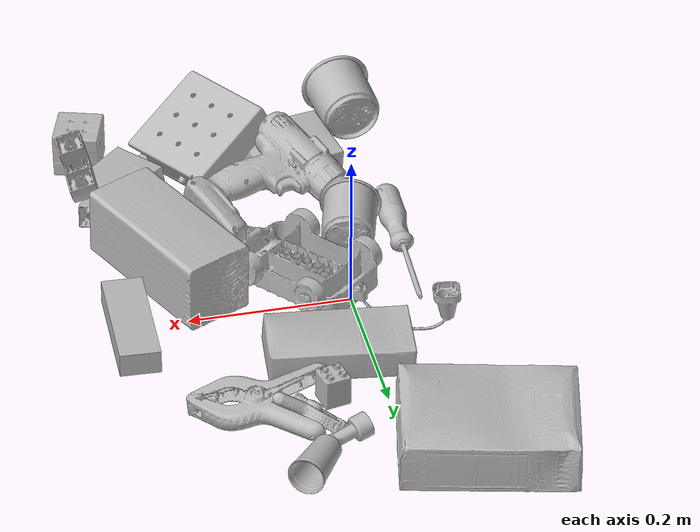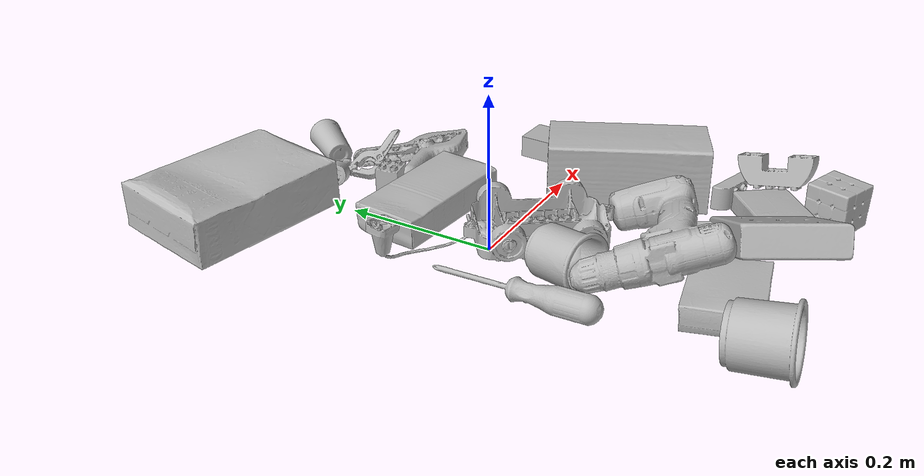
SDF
<sdf version="1.4">
  <world name="default">
    <light name="light1" type="point">
      <pose>0 0 1 0 0 0</pose>
      <diffuse>3 3 3 1</diffuse>
      <specular>3 3 3 1</specular>
    </light>
    <light name="light2" type="point">
      <pose>0 0.5 2 0 0 0</pose>
      <diffuse>1 1 1 1</diffuse>
      <specular>1 1 1 1</specular>
    </light>
    <light name="light3" type="point">
      <pose>0 0.5 2 0 0 0</pose>
      <diffuse>3 3 3 1</diffuse>
      <specular>3 3 3 1</specular>
    </light>
    <scene>
      <ambient>0.7 0.7 0.7</ambient>
    </scene>
    <model name="box21">
      <link name="link_box21">
        <collision name="default">
          <geometry>
            <mesh>
              <uri>model://cracker_box/collision_meshes/collision.obj</uri>
              <scale>1.0 1.0 1.0</scale>
            </mesh>
          </geometry>
          <surface>
            <friction>
              <ode>
                <mu>0.5</mu>
                <mu2>0.5</mu2>
              </ode>
            </friction>
          <contact>
        <ode>
            <max_vel>0</max_vel>
            <min_depth>0.0001</min_depth>
            <kp>1e8</kp>
        </ode>
    </contact></surface>
        </collision>
        <visual name="default">
          <geometry>
            <mesh>
              <uri>model://cracker_box/visual_meshes/visual.dae</uri>
              <scale>1.0 1.0 1.0</scale>
            </mesh>
          </geometry>
        </visual>
        <inertial>
          <mass>2.590176582336426</mass>
          <pose>0.0009464152390137315 0.00025434247800149024 -0.0017029535956680775 -0.0003162072774594163 -0.011106486806667554 0.0025467954652388498</pose>
          <inertia>
            <ixx>0.0065882523</ixx>
            <iyy>0.0108785</iyy>
            <izz>0.015524619</izz>
            <ixy>0</ixy>
            <ixz>0</ixz>
            <iyz>0</iyz>
          </inertia>
        </inertial>
      </link>
      <pose>-0.08996463567018509 0.3197806775569916 0.03648180514574051 -0.01178804985779196 -0.007367090354336598 -0.2174408214328414</pose>
    </model>
    <model name="box22">
      <link name="link_box22">
        <collision name="default">
          <geometry>
            <mesh>
              <uri>model://gelatin_box/collision_meshes/collision.obj</uri>
              <scale>1.0 1.0 1.0</scale>
            </mesh>
          </geometry>
          <surface>
            <friction>
              <ode>
                <mu>0.5</mu>
                <mu2>0.5</mu2>
              </ode>
            </friction>
          <contact>
        <ode>
            <max_vel>0</max_vel>
            <min_depth>0.0001</min_depth>
            <kp>1e8</kp>
        </ode>
    </contact></surface>
        </collision>
        <visual name="default">
          <geometry>
            <mesh>
              <uri>model://gelatin_box/visual_meshes/visual.dae</uri>
              <scale>1.0 1.0 1.0</scale>
            </mesh>
          </geometry>
        </visual>
        <inertial>
          <mass>0.25047940015792847</mass>
          <pose>0.0004319618456065655 0.00011156871914863586 -0.0003640321083366871 -0.0010503719848663328 -0.004755819155031653 0.016440561334722496</pose>
          <inertia>
            <ixx>0.00017681804</ixx>
            <iyy>0.00012630019</iyy>
            <izz>0.0002691564</izz>
            <ixy>0</ixy>
            <ixz>0</ixz>
            <iyz>0</iyz>
          </inertia>
        </inertial>
      </link>
      <pose>0.22835567593574524 -0.27813225984573364 0.014580643735826015 -3.1258662776587136 -0.02571923400927105 2.2888383599435653</pose>
    </model>
    <model name="box23">
      <link name="link_box23">
        <collision name="default">
          <geometry>
            <mesh>
              <uri>model://pudding_box/collision_meshes/collision.obj</uri>
              <scale>1.0 1.0 1.0</scale>
            </mesh>
          </geometry>
          <surface>
            <friction>
              <ode>
                <mu>0.5</mu>
                <mu2>0.5</mu2>
              </ode>
            </friction>
          <contact>
        <ode>
            <max_vel>0</max_vel>
            <min_depth>0.0001</min_depth>
            <kp>1e8</kp>
        </ode>
    </contact></surface>
        </collision>
        <visual name="default">
          <geometry>
            <mesh>
              <uri>model://pudding_box/visual_meshes/visual.dae</uri>
              <scale>1.0 1.0 1.0</scale>
            </mesh>
          </geometry>
        </visual>
        <inertial>
          <mass>0.39469316601753235</mass>
          <pose>0.0004894821904599667 0.000806788622867316 -0.0005188827635720372 0.005213100892100292 -0.006603796836808699 0.020079821441474487</pose>
          <inertia>
            <ixx>0.00044618026</ixx>
            <iyy>0.00030019323</iyy>
            <izz>0.00065890176</izz>
            <ixy>0</ixy>
            <ixz>0</ixz>
            <iyz>0</iyz>
          </inertia>
        </inertial>
      </link>
      <pose>0.01219607051461935 -0.2899154722690582 0.02031330205500126 0.012380795137464309 -0.038163920969124146 -1.3732227560877919</pose>
    </model>
    <model name="cup1">
      <link name="link_cup1">
        <collision name="default">
          <geometry>
            <mesh>
              <uri>model://cup_small/collision_meshes/collision.obj</uri>
              <scale>1.0 1.0 1.0</scale>
            </mesh>
          </geometry>
          <surface>
            <friction>
              <ode>
                <mu>0.5</mu>
                <mu2>0.5</mu2>
              </ode>
            </friction>
          <contact>
        <ode>
            <max_vel>0</max_vel>
            <min_depth>0.0001</min_depth>
            <kp>1e8</kp>
        </ode>
    </contact></surface>
        </collision>
        <visual name="default">
          <geometry>
            <mesh>
              <uri>model://cup_small/visual_meshes/visual.dae</uri>
              <scale>1.0 1.0 1.0</scale>
            </mesh>
          </geometry>
        </visual>
        <inertial>
          <mass>0.021035347133874893</mass>
          <pose>0.0001048244594130665 -0.0003377834218554199 -0.010742821730673313 -0.011493211249102088 -0.015280240526329824 -0.5058153233609384</pose>
          <inertia>
            <ixx>1.2385285e-05</ixx>
            <iyy>1.2449176e-05</iyy>
            <izz>5.591994e-06</izz>
            <ixy>0</ixy>
            <ixz>0</ixz>
            <iyz>0</iyz>
          </inertia>
        </inertial>
      </link>
      <pose>0.11433297395706177 0.320805162191391 0.02005874365568161 -0.8851291360401445 -1.4494777540229522 -1.2823077406223231</pose>
    </model>
    <model name="cup2">
      <link name="link_cup2">
        <collision name="default">
          <geometry>
            <mesh>
              <uri>model://e_cups/collision_meshes/collision.obj</uri>
              <scale>1.0 1.0 1.0</scale>
            </mesh>
          </geometry>
          <surface>
            <friction>
              <ode>
                <mu>0.5</mu>
                <mu2>0.5</mu2>
              </ode>
            </friction>
          <contact>
        <ode>
            <max_vel>0</max_vel>
            <min_depth>0.0001</min_depth>
            <kp>1e8</kp>
        </ode>
    </contact></surface>
        </collision>
        <visual name="default">
          <geometry>
            <mesh>
              <uri>model://e_cups/visual_meshes/visual.dae</uri>
              <scale>1.0 1.0 1.0</scale>
            </mesh>
          </geometry>
        </visual>
        <inertial>
          <mass>0.053841520100831985</mass>
          <pose>0.0011355747701600194 0.0028797851409763098 -0.0038829720579087734 0.69523823542345 0.08767615215021585 -0.5235238319868403</pose>
          <inertia>
            <ixx>4.7474743e-05</ixx>
            <iyy>4.9617902e-05</iyy>
            <izz>4.5391338e-05</izz>
            <ixy>0</ixy>
            <ixz>0</ixz>
            <iyz>0</iyz>
          </inertia>
        </inertial>
      </link>
      <pose>-0.023097781464457512 -0.11068756878376007 0.03504517674446106 -1.470192774791909 0.556224053312981 2.91872210104103</pose>
    </model>
    <model name="box11">
      <link name="link_box11">
        <collision name="default">
          <geometry>
            <mesh>
              <uri>model://jenga/collision_meshes/collision.obj</uri>
              <scale>1.0 1.0 1.0</scale>
            </mesh>
          </geometry>
          <surface>
            <friction>
              <ode>
                <mu>0.5</mu>
                <mu2>0.5</mu2>
              </ode>
            </friction>
          <contact>
        <ode>
            <max_vel>0</max_vel>
            <min_depth>0.0001</min_depth>
            <kp>1e8</kp>
        </ode>
    </contact></surface>
        </collision>
        <visual name="default">
          <geometry>
            <mesh>
              <uri>model://jenga/visual_meshes/visual.dae</uri>
              <scale>1.0 1.0 1.0</scale>
            </mesh>
          </geometry>
        </visual>
        <inertial>
          <mass>0.26362571120262146</mass>
          <pose>-2.502855807051674e-07 -0.00010250010382151231 -4.0923401684267446e-05 0.0 -7.342155186052628e-07 0.0</pose>
          <inertia>
            <ixx>7.295163e-05</ixx>
            <iyy>0.0004943182</iyy>
            <izz>0.0005277267</izz>
            <ixy>0</ixy>
            <ixz>0</ixz>
            <iyz>0</iyz>
          </inertia>
        </inertial>
      </link>
      <pose>0.272082656621933 0.01368009578436613 0.015000010840594769 -3.141592649853024 9.933753946683299e-09 1.525455175001992</pose>
    </model>
    <model name="box12">
      <link name="link_box12">
        <collision name="default">
          <geometry>
            <mesh>
              <uri>model://rubiks_cube/collision_meshes/collision.obj</uri>
              <scale>1.0 1.0 1.0</scale>
            </mesh>
          </geometry>
          <surface>
            <friction>
              <ode>
                <mu>0.5</mu>
                <mu2>0.5</mu2>
              </ode>
            </friction>
          <contact>
        <ode>
            <max_vel>0</max_vel>
            <min_depth>0.0001</min_depth>
            <kp>1e8</kp>
        </ode>
    </contact></surface>
        </collision>
        <visual name="default">
          <geometry>
            <mesh>
              <uri>model://rubiks_cube/visual_meshes/visual.dae</uri>
              <scale>1.0 1.0 1.0</scale>
            </mesh>
          </geometry>
        </visual>
        <inertial>
          <mass>0.2476155012845993</mass>
          <pose>2.6721041649580002e-05 5.256966323941015e-05 -7.2643156272533815e-06 -0.05467269607811095 -0.09813983501015876 -0.034455733913541106</pose>
          <inertia>
            <ixx>0.00013682418</ixx>
            <iyy>0.0001361861</iyy>
            <izz>0.00013795799</izz>
            <ixy>0</ixy>
            <ixz>0</ixz>
            <iyz>0</iyz>
          </inertia>
        </inertial>
      </link>
      <pose>0.2662273049354553 -0.3469650149345398 0.02947423979640007 -2.924571463034689 -1.5569264862683352 -0.5416421532539974</pose>
    </model>
    <model name="box13">
      <link name="link_box13">
        <collision name="default">
          <geometry>
            <mesh>
              <uri>model://sugar_box/collision_meshes/collision.obj</uri>
              <scale>1.0 1.0 1.0</scale>
            </mesh>
          </geometry>
          <surface>
            <friction>
              <ode>
                <mu>0.5</mu>
                <mu2>0.5</mu2>
              </ode>
            </friction>
          <contact>
        <ode>
            <max_vel>0</max_vel>
            <min_depth>0.0001</min_depth>
            <kp>1e8</kp>
        </ode>
    </contact></surface>
        </collision>
        <visual name="default">
          <geometry>
            <mesh>
              <uri>model://sugar_box/visual_meshes/visual.dae</uri>
              <scale>1.0 1.0 1.0</scale>
            </mesh>
          </geometry>
        </visual>
        <inertial>
          <mass>0.6861893534660339</mass>
          <pose>0.0010343727190047503 3.849109634757042e-05 -0.0003636480250861496 -0.00040462627129080113 0.001050663522124822 0.0026153787889376494</pose>
          <inertia>
            <ixx>0.0005717311</ixx>
            <iyy>0.0018479523</iyy>
            <izz>0.0022122194</izz>
            <ixy>0</ixy>
            <ixz>0</ixz>
            <iyz>0</iyz>
          </inertia>
        </inertial>
      </link>
      <pose>0.040379323065280914 0.11157651245594025 0.02237393707036972 3.129780397147159 -0.02047482443062607 -0.10372922125123911</pose>
    </model>
    <model name="box14">
      <link name="link_box14">
        <collision name="default">
          <geometry>
            <mesh>
              <uri>model://wood_block/collision_meshes/collision.obj</uri>
              <scale>1.0 1.0 1.0</scale>
            </mesh>
          </geometry>
          <surface>
            <friction>
              <ode>
                <mu>0.5</mu>
                <mu2>0.5</mu2>
              </ode>
            </friction>
          <contact>
        <ode>
            <max_vel>0</max_vel>
            <min_depth>0.0001</min_depth>
            <kp>1e8</kp>
        </ode>
    </contact></surface>
        </collision>
        <visual name="default">
          <geometry>
            <mesh>
              <uri>model://wood_block/visual_meshes/visual.dae</uri>
              <scale>1.0 1.0 1.0</scale>
            </mesh>
          </geometry>
        </visual>
        <inertial>
          <mass>2.2081377506256104</mass>
          <pose>-5.813315965497168e-06 -0.000570809468626976 0.00026408585836179554 -0.052206634003801496 -0.0051926960857359 -0.00686137798931887</pose>
          <inertia>
            <ixx>0.0029548227</ixx>
            <iyy>0.009334286</iyy>
            <izz>0.0092993695</izz>
            <ixy>0</ixy>
            <ixz>0</ixz>
            <iyz>0</iyz>
          </inertia>
        </inertial>
      </link>
      <pose>0.20425565540790558 -0.0895044133067131 0.04525851830840111 -0.005208267443924359 0.005718751599034684 2.0067635347430364</pose>
    </model>
    <model name="cup15">
      <link name="link_cup15">
        <collision name="default">
          <geometry>
            <mesh>
              <uri>model://g_cups/collision_meshes/collision.obj</uri>
              <scale>1.0 1.0 1.0</scale>
            </mesh>
          </geometry>
          <surface>
            <friction>
              <ode>
                <mu>0.5</mu>
                <mu2>0.5</mu2>
              </ode>
            </friction>
          <contact>
        <ode>
            <max_vel>0</max_vel>
            <min_depth>0.0001</min_depth>
            <kp>1e8</kp>
        </ode>
    </contact></surface>
        </collision>
        <visual name="default">
          <geometry>
            <mesh>
              <uri>model://g_cups/visual_meshes/visual.dae</uri>
              <scale>1.0 1.0 1.0</scale>
            </mesh>
          </geometry>
        </visual>
        <inertial>
          <mass>0.09534990042448044</mass>
          <pose>-0.000794626830611378 -4.206429366604425e-05 -0.002132937079295516 -0.21382187015428292 -0.3141046168173621 0.3112040328096479</pose>
          <inertia>
            <ixx>0.00011129469</ixx>
            <iyy>0.0001109161</iyy>
            <izz>0.00011528214</izz>
            <ixy>0</ixy>
            <ixz>0</ixz>
            <iyz>0</iyz>
          </inertia>
        </inertial>
      </link>
      <pose>-0.07183300703763962 -0.3528238832950592 0.039931174367666245 1.1990558641194373 1.2672757842656062 -0.24562923029523603</pose>
    </model>
    <model name="toy1">
      <link name="link_toy1">
        <collision name="default">
          <geometry>
            <mesh>
              <uri>model://a_lego_duplo/collision_meshes/collision.obj</uri>
              <scale>1.0 1.0 1.0</scale>
            </mesh>
          </geometry>
          <surface>
            <friction>
              <ode>
                <mu>0.5</mu>
                <mu2>0.5</mu2>
              </ode>
            </friction>
          <contact>
        <ode>
            <max_vel>0</max_vel>
            <min_depth>0.0001</min_depth>
            <kp>1e8</kp>
        </ode>
    </contact></surface>
        </collision>
        <visual name="default">
          <geometry>
            <mesh>
              <uri>model://a_lego_duplo/visual_meshes/visual.dae</uri>
              <scale>1.0 1.0 1.0</scale>
            </mesh>
          </geometry>
        </visual>
        <inertial>
          <mass>0.019288161769509315</mass>
          <pose>-0.00011337728938087821 0.00018517542048357427 0.00036926069878973067 -0.014116980162122142 -0.00012566491180396528 6.141847735431564e-05</pose>
          <inertia>
            <ixx>2.4728956e-06</ixx>
            <iyy>5.539828e-06</iyy>
            <izz>6.86231e-06</izz>
            <ixy>0</ixy>
            <ixz>0</ixz>
            <iyz>0</iyz>
          </inertia>
        </inertial>
      </link>
      <pose>0.2576389014720917 -0.21791045367717743 0.016109246760606766 1.57073219718107 6.287898790508046e-06 -0.29724758218189334</pose>
    </model>
    <model name="toy2">
      <link name="link_toy2">
        <collision name="default">
          <geometry>
            <mesh>
              <uri>model://nine_hole_peg_test/collision_meshes/collision.obj</uri>
              <scale>1.0 1.0 1.0</scale>
            </mesh>
          </geometry>
          <surface>
            <friction>
              <ode>
                <mu>0.5</mu>
                <mu2>0.5</mu2>
              </ode>
            </friction>
          <contact>
        <ode>
            <max_vel>0</max_vel>
            <min_depth>0.0001</min_depth>
            <kp>1e8</kp>
        </ode>
    </contact></surface>
        </collision>
        <visual name="default">
          <geometry>
            <mesh>
              <uri>model://nine_hole_peg_test/visual_meshes/visual.dae</uri>
              <scale>1.0 1.0 1.0</scale>
            </mesh>
          </geometry>
        </visual>
        <inertial>
          <mass>0.4416040778160095</mass>
          <pose>-0.004617387894541025 -0.009647616185247898 2.646069333422929e-05 -0.001466680632441769 0.0007194151669294288 -0.6342433000636255</pose>
          <inertia>
            <ixx>0.00069052057</ixx>
            <iyy>0.0006447319</iyy>
            <izz>0.0012099957</izz>
            <ixy>0</ixy>
            <ixz>0</ixz>
            <iyz>0</iyz>
          </inertia>
        </inertial>
      </link>
      <pose>0.11816265434026718 -0.3007231056690216 0.04441061615943909 0.04250584886312184 0.4406121101757573 0.5901648645919045</pose>
    </model>
    <model name="toy3">
      <link name="link_toy3">
        <collision name="default">
          <geometry>
            <mesh>
              <uri>model://b_lego_duplo/collision_meshes/collision.obj</uri>
              <scale>1.0 1.0 1.0</scale>
            </mesh>
          </geometry>
          <surface>
            <friction>
              <ode>
                <mu>0.5</mu>
                <mu2>0.5</mu2>
              </ode>
            </friction>
          <contact>
        <ode>
            <max_vel>0</max_vel>
            <min_depth>0.0001</min_depth>
            <kp>1e8</kp>
        </ode>
    </contact></surface>
        </collision>
        <visual name="default">
          <geometry>
            <mesh>
              <uri>model://b_lego_duplo/visual_meshes/visual.dae</uri>
              <scale>1.0 1.0 1.0</scale>
            </mesh>
          </geometry>
        </visual>
        <inertial>
          <mass>0.05141952633857727</mass>
          <pose>-0.00011053046182496473 -9.15286273084348e-06 0.0019294298253953457 -0.03749504579203769 -0.026353926476799443 0.45190277296460496</pose>
          <inertia>
            <ixx>1.0523392e-05</ixx>
            <iyy>1.0594135e-05</iyy>
            <izz>9.376003e-06</izz>
            <ixy>0</ixy>
            <ixz>0</ixz>
            <iyz>0</iyz>
          </inertia>
        </inertial>
      </link>
      <pose>0.06471195071935654 0.186292827129364 0.021815011277794838 1.955620711903126e-06 1.6731776668054572e-06 0.2139577861521463</pose>
    </model>
    <model name="toy4">
      <link name="link_toy4">
        <collision name="default">
          <geometry>
            <mesh>
              <uri>model://e_lego_duplo/collision_meshes/collision.obj</uri>
              <scale>1.0 1.0 1.0</scale>
            </mesh>
          </geometry>
          <surface>
            <friction>
              <ode>
                <mu>0.5</mu>
                <mu2>0.5</mu2>
              </ode>
            </friction>
          <contact>
        <ode>
            <max_vel>0</max_vel>
            <min_depth>0.0001</min_depth>
            <kp>1e8</kp>
        </ode>
    </contact></surface>
        </collision>
        <visual name="default">
          <geometry>
            <mesh>
              <uri>model://e_lego_duplo/visual_meshes/visual.dae</uri>
              <scale>1.0 1.0 1.0</scale>
            </mesh>
          </geometry>
        </visual>
        <inertial>
          <mass>0.10851083695888519</mass>
          <pose>0.0003256036143284291 0.00023485413112211972 0.0019521439680829644 -0.022567807713092337 -6.825385155411165e-05 -0.007625153430497312</pose>
          <inertia>
            <ixx>2.2628092e-05</ixx>
            <iyy>9.28715e-05</iyy>
            <izz>9.0438196e-05</izz>
            <ixy>0</ixy>
            <ixz>0</ixz>
            <iyz>0</iyz>
          </inertia>
        </inertial>
      </link>
      <pose>0.28124362230300903 -0.2650335133075714 0.04796420782804489 -2.851662638908853 0.1715583155133459 1.5855701889341227</pose>
    </model>
    <model name="toy5">
      <link name="link_toy5">
        <collision name="default">
          <geometry>
            <mesh>
              <uri>model://e_toy_airplane/collision_meshes/collision.obj</uri>
              <scale>1.0 1.0 1.0</scale>
            </mesh>
          </geometry>
          <surface>
            <friction>
              <ode>
                <mu>0.5</mu>
                <mu2>0.5</mu2>
              </ode>
            </friction>
          <contact>
        <ode>
            <max_vel>0</max_vel>
            <min_depth>0.0001</min_depth>
            <kp>1e8</kp>
        </ode>
    </contact></surface>
        </collision>
        <visual name="default">
          <geometry>
            <mesh>
              <uri>model://e_toy_airplane/visual_meshes/visual.dae</uri>
              <scale>1.0 1.0 1.0</scale>
            </mesh>
          </geometry>
        </visual>
        <inertial>
          <mass>0.028576364740729332</mass>
          <pose>0.00011740469926735386 -2.248284363304265e-05 -0.011187203228473663 0.005518470588584354 0.009228302056362008 0.15041344019646216</pose>
          <inertia>
            <ixx>8.721834e-06</ixx>
            <iyy>8.6326145e-06</iyy>
            <izz>2.6212538e-06</izz>
            <ixy>0</ixy>
            <ixz>0</ixz>
            <iyz>0</iyz>
          </inertia>
        </inertial>
      </link>
      <pose>0.07070061564445496 0.27062588930130005 0.012449946254491806 1.7506779971824147 0.0943601557939818 1.8980528969146562</pose>
    </model>
    <model name="toy6">
      <link name="link_toy6">
        <collision name="default">
          <geometry>
            <mesh>
              <uri>model://g_lego_duplo/collision_meshes/collision.obj</uri>
              <scale>1.0 1.0 1.0</scale>
            </mesh>
          </geometry>
          <surface>
            <friction>
              <ode>
                <mu>0.5</mu>
                <mu2>0.5</mu2>
              </ode>
            </friction>
          <contact>
        <ode>
            <max_vel>0</max_vel>
            <min_depth>0.0001</min_depth>
            <kp>1e8</kp>
        </ode>
    </contact></surface>
        </collision>
        <visual name="default">
          <geometry>
            <mesh>
              <uri>model://g_lego_duplo/visual_meshes/visual.dae</uri>
              <scale>1.0 1.0 1.0</scale>
            </mesh>
          </geometry>
        </visual>
        <inertial>
          <mass>0.2849176824092865</mass>
          <pose>-0.050047703087329865 0.0017554622609168291 0.0038806754164397717 0.010963023424049216 0.03810828912622395 -0.09653028734865207</pose>
          <inertia>
            <ixx>0.000412849</ixx>
            <iyy>0.0012481753</iyy>
            <izz>0.0015615128</izz>
            <ixy>0</ixy>
            <ixz>0</ixz>
            <iyz>0</iyz>
          </inertia>
        </inertial>
      </link>
      <pose>0.005119632929563522 3.3974647521972656e-05 0.027626216411590576 -3.1408519487126916 -0.030365514923437593 2.246947431090428</pose>
    </model>
    <model name="hardware1">
      <link name="link_hardware1">
        <collision name="default">
          <geometry>
            <mesh>
              <uri>model://large_clamp/collision_meshes/collision.obj</uri>
              <scale>1.0 1.0 1.0</scale>
            </mesh>
          </geometry>
          <surface>
            <friction>
              <ode>
                <mu>0.5</mu>
                <mu2>0.5</mu2>
              </ode>
            </friction>
          <contact>
        <ode>
            <max_vel>0</max_vel>
            <min_depth>0.0001</min_depth>
            <kp>1e8</kp>
        </ode>
    </contact></surface>
        </collision>
        <visual name="default">
          <geometry>
            <mesh>
              <uri>model://large_clamp/visual_meshes/visual.dae</uri>
              <scale>1.0 1.0 1.0</scale>
            </mesh>
          </geometry>
        </visual>
        <inertial>
          <mass>0.15191641449928284</mass>
          <pose>0.006369356997311115 0.00035856704926118255 -0.00018398075189907104 -0.0021330805905738653 0.00967158570552682 0.02663313568730603</pose>
          <inertia>
            <ixx>0.00013403181</ixx>
            <iyy>0.0002545337</iyy>
            <izz>0.00036821538</izz>
            <ixy>0</ixy>
            <ixz>0</ixz>
            <iyz>0</iyz>
          </inertia>
        </inertial>
      </link>
      <pose>0.15809933841228485 0.1954239457845688 0.018565909937024117 -0.08494377869982454 0.04675952933893344 -0.281183481803312</pose>
    </model>
    <model name="hardware2">
      <link name="link_hardware2">
        <collision name="default">
          <geometry>
            <mesh>
              <uri>model://phillips_screwdriver/collision_meshes/collision.obj</uri>
              <scale>1.0 1.0 1.0</scale>
            </mesh>
          </geometry>
          <surface>
            <friction>
              <ode>
                <mu>0.5</mu>
                <mu2>0.5</mu2>
              </ode>
            </friction>
          <contact>
        <ode>
            <max_vel>0</max_vel>
            <min_depth>0.0001</min_depth>
            <kp>1e8</kp>
        </ode>
    </contact></surface>
        </collision>
        <visual name="default">
          <geometry>
            <mesh>
              <uri>model://phillips_screwdriver/visual_meshes/visual.dae</uri>
              <scale>1.0 1.0 1.0</scale>
            </mesh>
          </geometry>
        </visual>
        <inertial>
          <mass>0.09855502843856812</mass>
          <pose>-0.04777182266116142 0.001036230125464499 -0.00045555492397397757 -0.15717104537538515 0.005850995063257979 -0.0021567379341223374</pose>
          <inertia>
            <ixx>1.15792045e-05</ixx>
            <iyy>0.00014518296</iyy>
            <izz>0.00014530632</izz>
            <ixy>0</ixy>
            <ixz>0</ixz>
            <iyz>0</iyz>
          </inertia>
        </inertial>
      </link>
      <pose>-0.08170962333679199 -0.0807933360338211 0.013971786946058273 2.0801259429885626 0.043792884850990955 1.547106580335321</pose>
    </model>
    <model name="hardware3">
      <link name="link_hardware3">
        <collision name="default">
          <geometry>
            <mesh>
              <uri>model://power_drill/collision_meshes/collision.obj</uri>
              <scale>1.0 1.0 1.0</scale>
            </mesh>
          </geometry>
          <surface>
            <friction>
              <ode>
                <mu>0.5</mu>
                <mu2>0.5</mu2>
              </ode>
            </friction>
          <contact>
        <ode>
            <max_vel>0</max_vel>
            <min_depth>0.0001</min_depth>
            <kp>1e8</kp>
        </ode>
    </contact></surface>
        </collision>
        <visual name="default">
          <geometry>
            <mesh>
              <uri>model://power_drill/visual_meshes/visual.dae</uri>
              <scale>1.0 1.0 1.0</scale>
            </mesh>
          </geometry>
        </visual>
        <inertial>
          <mass>0.8579708337783813</mass>
          <pose>-0.01478054840117693 0.01436943281441927 0.0012414173688739538 0.004609163561922946 0.004073017669368797 -0.18362705043487879</pose>
          <inertia>
            <ixx>0.0034962718</ixx>
            <iyy>0.0013756006</iyy>
            <izz>0.0046174442</izz>
            <ixy>0</ixy>
            <ixz>0</ixz>
            <iyz>0</iyz>
          </inertia>
        </inertial>
      </link>
      <pose>0.057378094643354416 -0.17643161118030548 0.04057871550321579 0.1004202588455339 0.2860429884551045 2.0711256123587263</pose>
    </model>
    <model name="hardware4">
      <link name="link_hardware4">
        <collision name="default">
          <geometry>
            <mesh>
              <uri>model://medium_clamp/collision_meshes/collision.obj</uri>
              <scale>1.0 1.0 1.0</scale>
            </mesh>
          </geometry>
          <surface>
            <friction>
              <ode>
                <mu>0.5</mu>
                <mu2>0.5</mu2>
              </ode>
            </friction>
          <contact>
        <ode>
            <max_vel>0</max_vel>
            <min_depth>0.0001</min_depth>
            <kp>1e8</kp>
        </ode>
    </contact></surface>
        </collision>
        <visual name="default">
          <geometry>
            <mesh>
              <uri>model://medium_clamp/visual_meshes/visual.dae</uri>
              <scale>1.0 1.0 1.0</scale>
            </mesh>
          </geometry>
        </visual>
        <inertial>
          <mass>0.019661318510770798</mass>
          <pose>0.005390993319451809 0.0003953249251935631 -0.00012221586075611413 -0.0012269159857183107 0.002584502991641296 0.038207758549707246</pose>
          <inertia>
            <ixx>5.356451e-06</ixx>
            <iyy>7.795151e-06</iyy>
            <izz>1.2006867e-05</izz>
            <ixy>0</ixy>
            <ixz>0</ixz>
            <iyz>0</iyz>
          </inertia>
        </inertial>
      </link>
      <pose>0.10037249326705933 0.22830194234848022 0.020156562328338623 2.489692496346105 0.20077419449409542 2.368399866944373</pose>
    </model>
  <physics type="ode">
      <max_contacts>50</max_contacts>
      <ode>
        <solver>
          <type>quick</type>
          <iters>75</iters>
        </solver>
        <constraints>
          <contact_max_correcting_vel>0</contact_max_correcting_vel>
          <contact_surface_layer>0</contact_surface_layer>
        </constraints>
      </ode>
    </physics></world>
</sdf>
